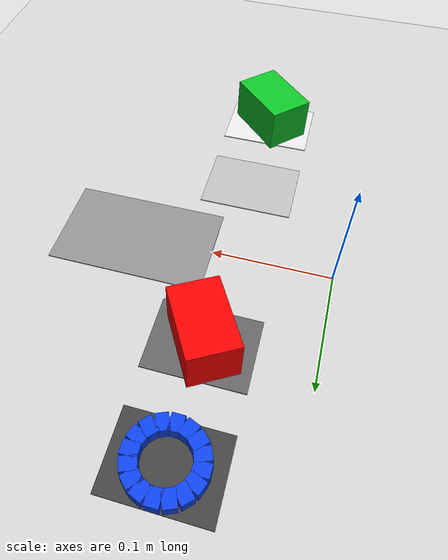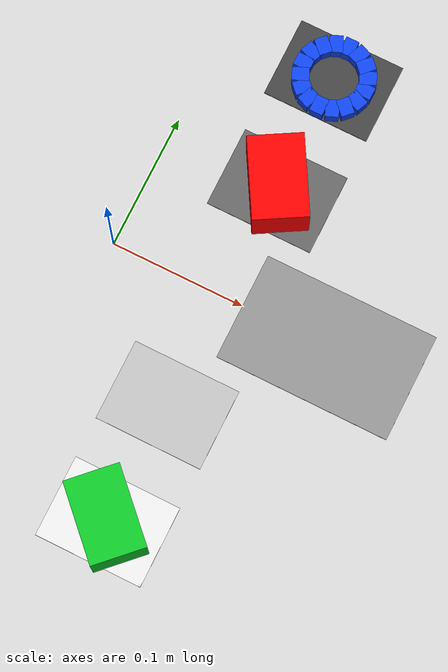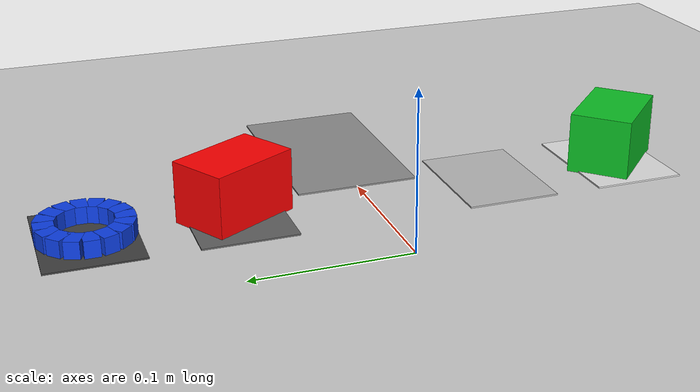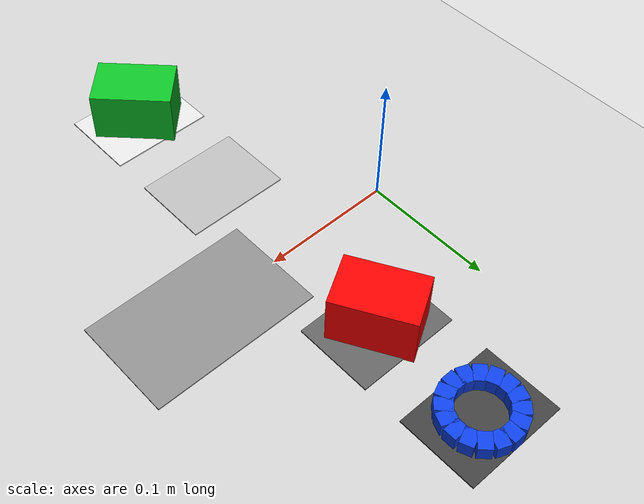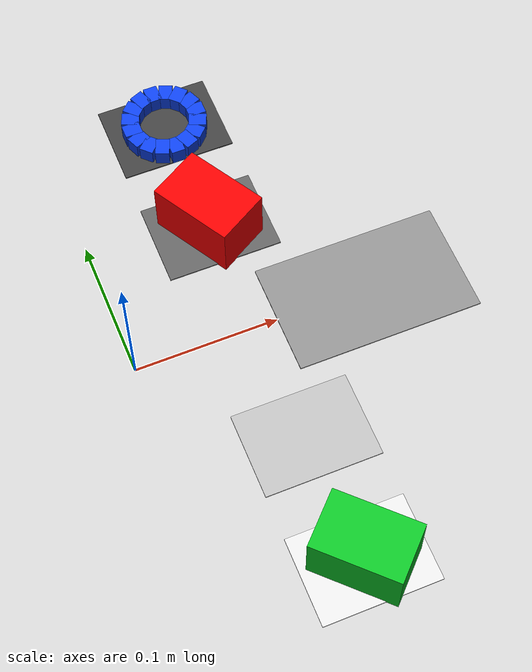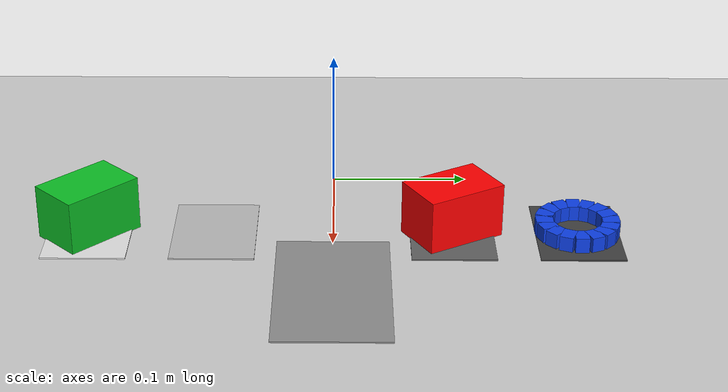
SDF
<?xml version="1.0"?>
<sdf version="1.10">
  <world name="empty">
    <physics name="1ms" type="ignored">
      <!-- 파지는 접촉이 지배한다. 5ms에서는 한 스텝에 손가락이 물체 안으로 파고든다. -->
      <max_step_size>0.001</max_step_size>
      <real_time_factor>1</real_time_factor>
      <real_time_update_rate>1000</real_time_update_rate>
    </physics>
    <plugin name="gz::sim::systems::Physics" filename="gz-sim-physics-system"/>
    <plugin name="gz::sim::systems::UserCommands" filename="gz-sim-user-commands-system"/>
    <plugin name="gz::sim::systems::SceneBroadcaster" filename="gz-sim-scene-broadcaster-system"/>
    <plugin name="gz::sim::systems::Contact" filename="gz-sim-contact-system"/>
    <plugin name="gz::sim::systems::Sensors" filename="gz-sim-sensors-system">
      <render_engine>ogre2</render_engine>
    </plugin>
    <gravity>0 0 -9.8</gravity>
    <scene>
      <ambient>0.4 0.4 0.4 1</ambient>
      <background>0.7 0.7 0.7 1</background>
      <shadows>true</shadows>
    </scene>

    <model name="ground_plane">
      <static>true</static>
      <link name="link">
        <collision name="collision">
          <geometry><plane><normal>0 0 1</normal><size>100 100</size></plane></geometry>
          <surface><friction><ode/></friction></surface>
        </collision>
        <visual name="visual">
          <geometry><plane><normal>0 0 1</normal><size>100 100</size></plane></geometry>
          <material><ambient>0.8 0.8 0.8 1</ambient><diffuse>0.8 0.8 0.8 1</diffuse></material>
        </visual>
      </link>
    </model>

    <light name="sun" type="directional">
      <pose>0 0 10 0 0 0</pose>
      <cast_shadows>true</cast_shadows>
      <intensity>1</intensity>
      <direction>-0.5 0.1 -0.9</direction>
      <diffuse>0.8 0.8 0.8 1</diffuse>
      <specular>0.2 0.2 0.2 1</specular>
      <attenuation><range>1000</range><linear>0.01</linear><constant>0.9</constant><quadratic>0.001</quadratic></attenuation>
    </light>

    <!-- === 구역 판 5장 === -->
    <model name="zone_shelf_ring">
      <static>true</static>
      <pose>0.085 0.175 0.0005 0 0 0</pose>
      <link name="link">
        <visual name="visual">
          <geometry><box><size>0.08 0.06 0.001</size></box></geometry>
          <material><ambient>0.25 0.25 0.25 1</ambient><diffuse>0.25 0.25 0.25 1</diffuse></material>
        </visual>
      </link>
    </model>

    <model name="zone_shelf_block">
      <static>true</static>
      <pose>0.085 0.085 0.0005 0 0 0</pose>
      <link name="link">
        <visual name="visual">
          <geometry><box><size>0.08 0.06 0.001</size></box></geometry>
          <material><ambient>0.38 0.38 0.38 1</ambient><diffuse>0.38 0.38 0.38 1</diffuse></material>
        </visual>
      </link>
    </model>

    <model name="zone_work">
      <static>true</static>
      <pose>0.165 0.000 0.0005 0 0 0</pose>
      <link name="link">
        <visual name="visual">
          <geometry><box><size>0.13 0.08 0.001</size></box></geometry>
          <material><ambient>0.55 0.55 0.55 1</ambient><diffuse>0.55 0.55 0.55 1</diffuse></material>
        </visual>
      </link>
    </model>

    <model name="zone_counter">
      <static>true</static>
      <pose>0.085 -0.085 0.0005 0 0 0</pose>
      <link name="link">
        <visual name="visual">
          <geometry><box><size>0.08 0.06 0.001</size></box></geometry>
          <material><ambient>0.72 0.72 0.72 1</ambient><diffuse>0.72 0.72 0.72 1</diffuse></material>
        </visual>
      </link>
    </model>

    <model name="zone_bin">
      <static>true</static>
      <pose>0.085 -0.175 0.0005 0 0 0</pose>
      <link name="link">
        <visual name="visual">
          <geometry><box><size>0.08 0.06 0.001</size></box></geometry>
          <material><ambient>0.88 0.88 0.88 1</ambient><diffuse>0.88 0.88 0.88 1</diffuse></material>
        </visual>
      </link>
    </model>

    <!-- 빨간 블록 : 블록 창고 -->
    <model name="red_block">
      <pose>0.085 0.085 0.02 0 0 0.5236</pose>
    <!-- spawn 위치(월드 기준). 팔 앞쪽(x=0.20) + 살짝 옆(y=0.06)으로 두어
         현재 쫙 펴진 팔에 가리지 않고 화면에 보이게. 바닥(z=0) 위에 얹히도록 살짝 띄워 놓음.
         값은 잠정 — 화면 보고 조정한다(피킹 도달 범위 안: 이전 pick/place가 x≈0.2, y≈0~0.1에서 성공). -->

    <link name="link">
      <!-- 관성 : 박스(질량 0.05kg) 근사. 동적 물체라 바닥에 얹혀 있다가 나중에 집혀 들린다. -->
      <inertial>
        <mass>0.05</mass>
        <inertia>
          <ixx>0.0000217</ixx>
          <ixy>0.0</ixy>
          <ixz>0.0</ixz>
          <iyy>0.0000133</iyy>
          <iyz>0.0</iyz>
          <izz>0.0000217</izz>
        </inertia>
      </inertial>

      <!-- 충돌 형상 : 바닥·그리퍼와 부딪히는 실제 몸체 -->
      <collision name="collision">
        <geometry>
          <box>
            <size>0.04 0.06 0.04</size>
          </box>
        </geometry>
        <surface>
          <friction>
            <ode>
              <mu>1.0</mu>
              <mu2>1.0</mu2>
            </ode>
          </friction>
        </surface>
      </collision>

      <!-- 시각 형상 : 카메라가 보는 빨간 겉모습. HSV 검출이 이 빨강을 찾는다. -->
      <visual name="visual">
        <geometry>
          <box>
            <size>0.04 0.06 0.04</size>
          </box>
        </geometry>
        <material>
          <ambient>1.0 0.0 0.0 1</ambient>
          <diffuse>1.0 0.0 0.0 1</diffuse>
          <specular>0.1 0.1 0.1 1</specular>
        </material>
      </visual>
    </link>
  </model>

    <!-- 초록 블록(불량) : 수거함. 불량품의 제자리는 창고가 아니라 여기다 -->
    <model name="green_block">
      <pose>0.085 -0.175 0.02 0 0 0.7854</pose>

    <link name="link">
      <!-- 관성 : 박스(질량 0.05kg) 근사. red_block과 같은 값. -->
      <inertial>
        <mass>0.05</mass>
        <inertia>
          <ixx>0.0000217</ixx>
          <ixy>0.0</ixy>
          <ixz>0.0</ixz>
          <iyy>0.0000133</iyy>
          <iyz>0.0</iyz>
          <izz>0.0000217</izz>
        </inertia>
      </inertial>

      <!-- 충돌 형상 : 바닥·그리퍼와 부딪히는 실제 몸체 -->
      <collision name="collision">
        <geometry>
          <box>
            <size>0.04 0.06 0.04</size>
          </box>
        </geometry>
        <surface>
          <friction>
            <ode>
              <mu>1.0</mu>
              <mu2>1.0</mu2>
            </ode>
          </friction>
        </surface>
      </collision>

      <!-- 시각 형상 : HSV 검출이 이 초록을 찾는다. -->
      <visual name="visual">
        <geometry>
          <box>
            <size>0.04 0.06 0.04</size>
          </box>
        </geometry>
        <material>
          <ambient>0.05 0.75 0.15 1</ambient>
          <diffuse>0.05 0.75 0.15 1</diffuse>
          <specular>0.1 0.1 0.1 1</specular>
        </material>
      </visual>
    </link>
  </model>

    <!-- 파란 링 : 링 창고 -->
    <model name="blue_ring">
      <pose>0.085 0.175 0.0 0 0 0.0</pose>
    <link name='link'>
      <inertial>
        <mass>0.04</mass>
        <!-- 속 빈 원통 근사: izz = m/2*(Ro^2+Ri^2), ixx=iyy = m/12*(3*(Ro^2+Ri^2)+h^2) -->
        <inertia>
          <ixx>1.254e-05</ixx><ixy>0</ixy><ixz>0</ixz>
          <iyy>1.254e-05</iyy><iyz>0</iyz><izz>2.413e-05</izz>
        </inertia>
      </inertial>
      <collision name='ring_col_0'>
        <geometry><box><size>0.01250 0.00980 0.01200</size></box></geometry>
      </collision>
      <visual name='ring_vis_0'>
        <pose>0.02375 0.00000 0.00600 0 0 0.00000</pose>
        <geometry><box><size>0.01250 0.00980 0.01200</size></box></geometry>
        <material>
          <ambient>0.05 0.25 0.9 1</ambient>
          <diffuse>0.05 0.25 0.9 1</diffuse>
        </material>
      </visual>
      <collision name='ring_col_1'>
        <pose>0.02194 0.00909 0.00600 0 0 0.39270</pose>
        <geometry><box><size>0.01250 0.00980 0.01200</size></box></geometry>
      </collision>
      <visual name='ring_vis_1'>
        <pose>0.02194 0.00909 0.00600 0 0 0.39270</pose>
        <geometry><box><size>0.01250 0.00980 0.01200</size></box></geometry>
        <material>
          <ambient>0.05 0.25 0.9 1</ambient>
          <diffuse>0.05 0.25 0.9 1</diffuse>
        </material>
      </visual>
      <collision name='ring_col_2'>
        <pose>0.01679 0.01679 0.00600 0 0 0.78540</pose>
        <geometry><box><size>0.01250 0.00980 0.01200</size></box></geometry>
      </collision>
      <visual name='ring_vis_2'>
        <pose>0.01679 0.01679 0.00600 0 0 0.78540</pose>
        <geometry><box><size>0.01250 0.00980 0.01200</size></box></geometry>
        <material>
          <ambient>0.05 0.25 0.9 1</ambient>
          <diffuse>0.05 0.25 0.9 1</diffuse>
        </material>
      </visual>
      <collision name='ring_col_3'>
        <pose>0.00909 0.02194 0.00600 0 0 1.17810</pose>
        <geometry><box><size>0.01250 0.00980 0.01200</size></box></geometry>
      </collision>
      <visual name='ring_vis_3'>
        <pose>0.00909 0.02194 0.00600 0 0 1.17810</pose>
        <geometry><box><size>0.01250 0.00980 0.01200</size></box></geometry>
        <material>
          <ambient>0.05 0.25 0.9 1</ambient>
          <diffuse>0.05 0.25 0.9 1</diffuse>
        </material>
      </visual>
      <collision name='ring_col_4'>
        <pose>0.00000 0.02375 0.00600 0 0 1.57080</pose>
        <geometry><box><size>0.01250 0.00980 0.01200</size></box></geometry>
      </collision>
      <visual name='ring_vis_4'>
        <pose>0.00000 0.02375 0.00600 0 0 1.57080</pose>
        <geometry><box><size>0.01250 0.00980 0.01200</size></box></geometry>
        <material>
          <ambient>0.05 0.25 0.9 1</ambient>
          <diffuse>0.05 0.25 0.9 1</diffuse>
        </material>
      </visual>
      <collision name='ring_col_5'>
        <pose>-0.00909 0.02194 0.00600 0 0 1.96350</pose>
        <geometry><box><size>0.01250 0.00980 0.01200</size></box></geometry>
      </collision>
      <visual name='ring_vis_5'>
        <pose>-0.00909 0.02194 0.00600 0 0 1.96350</pose>
        <geometry><box><size>0.01250 0.00980 0.01200</size></box></geometry>
        <material>
          <ambient>0.05 0.25 0.9 1</ambient>
          <diffuse>0.05 0.25 0.9 1</diffuse>
        </material>
      </visual>
      <collision name='ring_col_6'>
        <pose>-0.01679 0.01679 0.00600 0 0 2.35619</pose>
        <geometry><box><size>0.01250 0.00980 0.01200</size></box></geometry>
      </collision>
      <visual name='ring_vis_6'>
        <pose>-0.01679 0.01679 0.00600 0 0 2.35619</pose>
        <geometry><box><size>0.01250 0.00980 0.01200</size></box></geometry>
        <material>
          <ambient>0.05 0.25 0.9 1</ambient>
          <diffuse>0.05 0.25 0.9 1</diffuse>
        </material>
      </visual>
      <collision name='ring_col_7'>
        <pose>-0.02194 0.00909 0.00600 0 0 2.74889</pose>
        <geometry><box><size>0.01250 0.00980 0.01200</size></box></geometry>
      </collision>
      <visual name='ring_vis_7'>
        <pose>-0.02194 0.00909 0.00600 0 0 2.74889</pose>
        <geometry><box><size>0.01250 0.00980 0.01200</size></box></geometry>
        <material>
          <ambient>0.05 0.25 0.9 1</ambient>
          <diffuse>0.05 0.25 0.9 1</diffuse>
        </material>
      </visual>
      <collision name='ring_col_8'>
        <pose>-0.02375 0.00000 0.00600 0 0 3.14159</pose>
        <geometry><box><size>0.01250 0.00980 0.01200</size></box></geometry>
      </collision>
      <visual name='ring_vis_8'>
        <pose>-0.02375 0.00000 0.00600 0 0 3.14159</pose>
        <geometry><box><size>0.01250 0.00980 0.01200</size></box></geometry>
        <material>
          <ambient>0.05 0.25 0.9 1</ambient>
          <diffuse>0.05 0.25 0.9 1</diffuse>
        </material>
      </visual>
      <collision name='ring_col_9'>
        <pose>-0.02194 -0.00909 0.00600 0 0 3.53429</pose>
        <geometry><box><size>0.01250 0.00980 0.01200</size></box></geometry>
      </collision>
      <visual name='ring_vis_9'>
        <pose>-0.02194 -0.00909 0.00600 0 0 3.53429</pose>
        <geometry><box><size>0.01250 0.00980 0.01200</size></box></geometry>
        <material>
          <ambient>0.05 0.25 0.9 1</ambient>
          <diffuse>0.05 0.25 0.9 1</diffuse>
        </material>
      </visual>
      <collision name='ring_col_10'>
        <pose>-0.01679 -0.01679 0.00600 0 0 3.92699</pose>
        <geometry><box><size>0.01250 0.00980 0.01200</size></box></geometry>
      </collision>
      <visual name='ring_vis_10'>
        <pose>-0.01679 -0.01679 0.00600 0 0 3.92699</pose>
        <geometry><box><size>0.01250 0.00980 0.01200</size></box></geometry>
        <material>
          <ambient>0.05 0.25 0.9 1</ambient>
          <diffuse>0.05 0.25 0.9 1</diffuse>
        </material>
      </visual>
      <collision name='ring_col_11'>
        <pose>-0.00909 -0.02194 0.00600 0 0 4.31969</pose>
        <geometry><box><size>0.01250 0.00980 0.01200</size></box></geometry>
      </collision>
      <visual name='ring_vis_11'>
        <pose>-0.00909 -0.02194 0.00600 0 0 4.31969</pose>
        <geometry><box><size>0.01250 0.00980 0.01200</size></box></geometry>
        <material>
          <ambient>0.05 0.25 0.9 1</ambient>
          <diffuse>0.05 0.25 0.9 1</diffuse>
        </material>
      </visual>
      <collision name='ring_col_12'>
        <pose>-0.00000 -0.02375 0.00600 0 0 4.71239</pose>
        <geometry><box><size>0.01250 0.00980 0.01200</size></box></geometry>
      </collision>
      <visual name='ring_vis_12'>
        <pose>-0.00000 -0.02375 0.00600 0 0 4.71239</pose>
        <geometry><box><size>0.01250 0.00980 0.01200</size></box></geometry>
        <material>
          <ambient>0.05 0.25 0.9 1</ambient>
          <diffuse>0.05 0.25 0.9 1</diffuse>
        </material>
      </visual>
      <collision name='ring_col_13'>
        <pose>0.00909 -0.02194 0.00600 0 0 5.10509</pose>
        <geometry><box><size>0.01250 0.00980 0.01200</size></box></geometry>
      </collision>
      <visual name='ring_vis_13'>
        <pose>0.00909 -0.02194 0.00600 0 0 5.10509</pose>
        <geometry><box><size>0.01250 0.00980 0.01200</size></box></geometry>
        <material>
          <ambient>0.05 0.25 0.9 1</ambient>
          <diffuse>0.05 0.25 0.9 1</diffuse>
        </material>
      </visual>
      <collision name='ring_col_14'>
        <pose>0.01679 -0.01679 0.00600 0 0 5.49779</pose>
        <geometry><box><size>0.01250 0.00980 0.01200</size></box></geometry>
      </collision>
      <visual name='ring_vis_14'>
        <pose>0.01679 -0.01679 0.00600 0 0 5.49779</pose>
        <geometry><box><size>0.01250 0.00980 0.01200</size></box></geometry>
        <material>
          <ambient>0.05 0.25 0.9 1</ambient>
          <diffuse>0.05 0.25 0.9 1</diffuse>
        </material>
      </visual>
      <collision name='ring_col_15'>
        <pose>0.02194 -0.00909 0.00600 0 0 5.89049</pose>
        <geometry><box><size>0.01250 0.00980 0.01200</size></box></geometry>
      </collision>
      <visual name='ring_vis_15'>
        <pose>0.02194 -0.00909 0.00600 0 0 5.89049</pose>
        <geometry><box><size>0.01250 0.00980 0.01200</size></box></geometry>
        <material>
          <ambient>0.05 0.25 0.9 1</ambient>
          <diffuse>0.05 0.25 0.9 1</diffuse>
        </material>
      </visual>
    </link>
  </model>

  </world>
</sdf>
